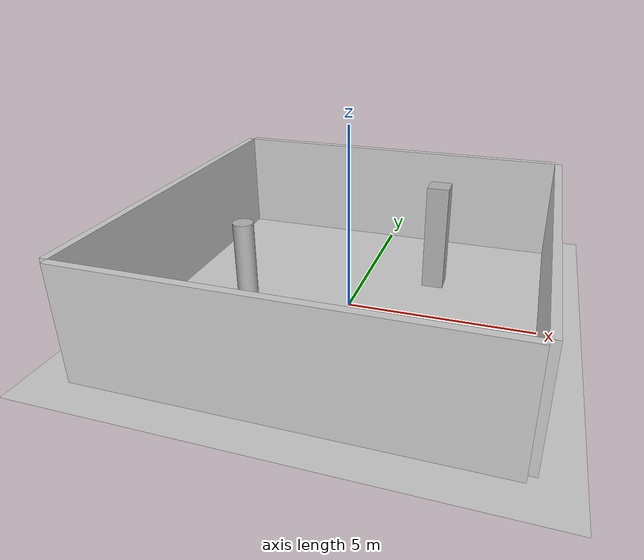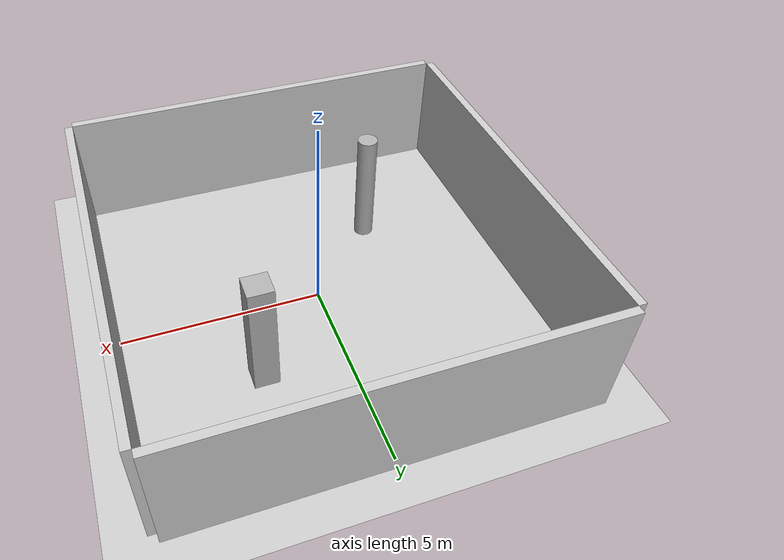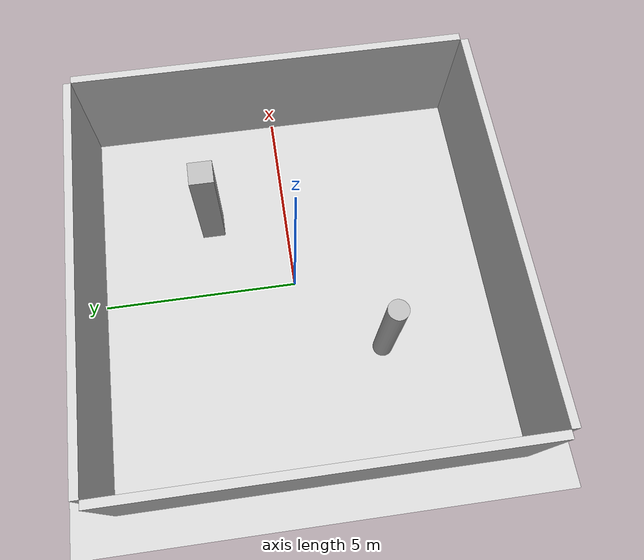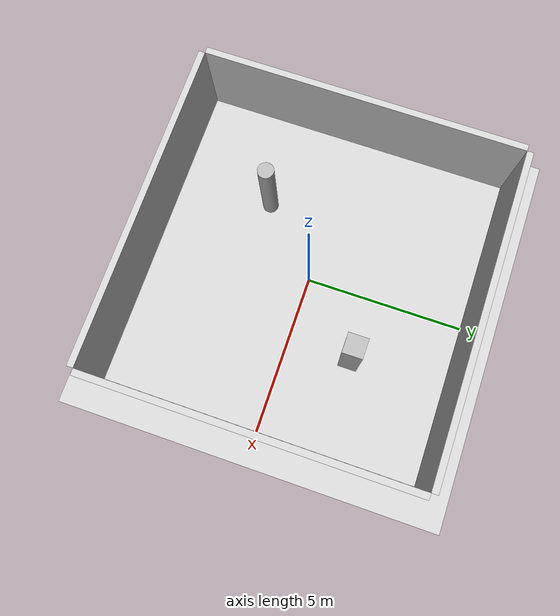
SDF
<?xml version="1.0" ?>
<sdf version="1.6">
  <world name="indoor_room_world">
    <include>
      <uri>model://ground_plane</uri>
    </include>
    <include>
      <uri>model://sun</uri>
    </include>

    <!-- Surrounding walls -->
    <model name="wall_north" static="true">
      <pose>0 5.1 1.5 0 0 0</pose>
      <link name="link">
        <collision name="collision">
          <geometry>
            <box>
              <size>10.0 0.2 3.0</size>
            </box>
          </geometry>
        </collision>
        <visual name="visual">
          <geometry>
            <box>
              <size>10.0 0.2 3.0</size>
            </box>
          </geometry>
          <material>
            <ambient>0.8 0.8 0.8 1.0</ambient>
            <diffuse>0.8 0.8 0.8 1.0</diffuse>
          </material>
        </visual>
      </link>
    </model>

    <model name="wall_south" static="true">
      <pose>0 -5.1 1.5 0 0 0</pose>
      <link name="link">
        <collision name="collision">
          <geometry>
            <box>
              <size>10.0 0.2 3.0</size>
            </box>
          </geometry>
        </collision>
        <visual name="visual">
          <geometry>
            <box>
              <size>10.0 0.2 3.0</size>
            </box>
          </geometry>
          <material>
            <ambient>0.8 0.8 0.8 1.0</ambient>
            <diffuse>0.8 0.8 0.8 1.0</diffuse>
          </material>
        </visual>
      </link>
    </model>

    <model name="wall_east" static="true">
      <pose>5.1 0 1.5 0 0 1.5708</pose>
      <link name="link">
        <collision name="collision">
          <geometry>
            <box>
              <size>10.0 0.2 3.0</size>
            </box>
          </geometry>
        </collision>
        <visual name="visual">
          <geometry>
            <box>
              <size>10.0 0.2 3.0</size>
            </box>
          </geometry>
          <material>
            <ambient>0.8 0.8 0.8 1.0</ambient>
            <diffuse>0.8 0.8 0.8 1.0</diffuse>
          </material>
        </visual>
      </link>
    </model>

    <model name="wall_west" static="true">
      <pose>-5.1 0 1.5 0 0 1.5708</pose>
      <link name="link">
        <collision name="collision">
          <geometry>
            <box>
              <size>10.0 0.2 3.0</size>
            </box>
          </geometry>
        </collision>
        <visual name="visual">
          <geometry>
            <box>
              <size>10.0 0.2 3.0</size>
            </box>
          </geometry>
          <material>
            <ambient>0.8 0.8 0.8 1.0</ambient>
            <diffuse>0.8 0.8 0.8 1.0</diffuse>
          </material>
        </visual>
      </link>
    </model>

    <!-- Interior pillars -->
    <model name="cylindrical_pillar" static="true">
      <pose>-2 -2 1.5 0 0 0</pose>
      <link name="link">
        <collision name="collision">
          <geometry>
            <cylinder>
              <radius>0.25</radius>
              <length>3.0</length>
            </cylinder>
          </geometry>
        </collision>
        <visual name="visual">
          <geometry>
            <cylinder>
              <radius>0.25</radius>
              <length>3.0</length>
            </cylinder>
          </geometry>
          <material>
            <ambient>0.7 0.7 0.7 1.0</ambient>
            <diffuse>0.7 0.7 0.7 1.0</diffuse>
          </material>
        </visual>
      </link>
    </model>

    <model name="rectangular_pillar" static="true">
      <pose>2 2 1.5 0 0 0</pose>
      <link name="link">
        <collision name="collision">
          <geometry>
            <box>
              <size>0.6 0.6 3.0</size>
            </box>
          </geometry>
        </collision>
        <visual name="visual">
          <geometry>
            <box>
              <size>0.6 0.6 3.0</size>
            </box>
          </geometry>
          <material>
            <ambient>0.7 0.7 0.7 1.0</ambient>
            <diffuse>0.7 0.7 0.7 1.0</diffuse>
          </material>
        </visual><?xml version="1.0" ?>
<sdf version="1.6">
  <world name="room_10x10_world">
    <!-- Sun -->
    <include>
      <uri>model://sun</uri>
    </include>

    <!-- 10m x 10m Room with 4 walls and a floor -->
    <model name="room_10x10">
      <static>true</static>
      <pose>0 0 0 0 0 0</pose>

      <!-- Floor (10 x 10 x 0.1 m) -->
      <link name="floor">
        <pose>0 0 -0.05 0 0 0</pose>
        <collision name="floor_col">
          <geometry>
            <box><size>10 10 0.1</size></box>
          </geometry>
          <surface>
            <friction>
              <ode><mu>1.0</mu><mu2>1.0</mu2></ode>
            </friction>
          </surface>
        </collision>
        <visual name="floor_vis">
          <geometry>
            <box><size>10 10 0.1</size></box>
          </geometry>
          <material>
            <ambient>0.2 0.2 0.2 1</ambient>
            <diffuse>0.3 0.3 0.35 1</diffuse>
          </material>
        </visual>
      </link>

      <!-- Walls (height 3 m, thickness 0.15 m) -->
      <!-- North wall (y=+5) -->
      <link name="wall_n">
        <pose>0 5 1.5 0 0 0</pose>
        <collision name="wall_n_col">
          <geometry>
            <box><size>10 0.15 3</size></box>
          </geometry>
        </collision>
        <visual name="wall_n_vis">
          <geometry>
            <box><size>10 0.15 3</size></box>
          </geometry>
          <material>
            <ambient>0.6 0.6 0.6 1</ambient>
            <diffuse>0.8 0.8 0.8 1</diffuse>
          </material>
        </visual>
      </link>

      <!-- South wall (y=-5) -->
      <link name="wall_s">
        <pose>0 -5 1.5 0 0 0</pose>
        <collision name="wall_s_col">
          <geometry>
            <box><size>10 0.15 3</size></box>
          </geometry>
        </collision>
        <visual name="wall_s_vis">
          <geometry>
            <box><size>10 0.15 3</size></box>
          </geometry>
          <material>
            <ambient>0.6 0.6 0.6 1</ambient>
            <diffuse>0.8 0.8 0.8 1</diffuse>
          </material>
        </visual>
      </link>

      <!-- East wall (x=+5) -->
      <link name="wall_e">
        <pose>5 0 1.5 0 0 0</pose>
        <collision name="wall_e_col">
          <geometry>
            <box><size>0.15 10 3</size></box>
          </geometry>
        </collision>
        <visual name="wall_e_vis">
          <geometry>
            <box><size>0.15 10 3</size></box>
          </geometry>
          <material>
            <ambient>0.6 0.6 0.6 1</ambient>
            <diffuse>0.8 0.8 0.8 1</diffuse>
          </material>
        </visual>
      </link>

      <!-- West wall (x=-5) -->
      <link name="wall_w">
        <pose>-5 0 1.5 0 0 0</pose>
        <collision name="wall_w_col">
          <geometry>
            <box><size>0.15 10 3</size></box>
          </geometry>
        </collision>
        <visual name="wall_w_vis">
          <geometry>
            <box><size>0.15 10 3</size></box>
          </geometry>
          <material>
            <ambient>0.6 0.6 0.6 1</ambient>
            <diffuse>0.8 0.8 0.8 1</diffuse>
          </material>
        </visual>
      </link>

      <!-- Cylindrical pillars (radius 0.25 m, height 2.8 m) -->
      <link name="cyl_pillar_1">
        <pose>-2.5 -2.5 1.4 0 0 0</pose>
        <collision name="cyl_pillar_1_col">
          <geometry>
            <cylinder><radius>0.25</radius><length>2.8</length></cylinder>
          </geometry>
        </collision>
        <visual name="cyl_pillar_1_vis">
          <geometry>
            <cylinder><radius>0.25</radius><length>2.8</length></cylinder>
          </geometry>
          <material>
            <ambient>0.3 0.3 0.5 1</ambient>
            <diffuse>0.4 0.4 0.8 1</diffuse>
          </material>
        </visual>
      </link>

      <link name="cyl_pillar_2">
        <pose>2.5 2.5 1.4 0 0 0</pose>
        <collision name="cyl_pillar_2_col">
          <geometry>
            <cylinder><radius>0.25</radius><length>2.8</length></cylinder>
          </geometry>
        </collision>
        <visual name="cyl_pillar_2_vis">
          <geometry>
            <cylinder><radius>0.25</radius><length>2.8</length></cylinder>
          </geometry>
          <material>
            <ambient>0.3 0.3 0.5 1</ambient>
            <diffuse>0.4 0.4 0.8 1</diffuse>
          </material>
        </visual>
      </link>

      <!-- Rectangular pillars (0.5 x 0.5 m, height 2.8 m) -->
      <link name="box_pillar_1">
        <pose>-2.5 2.5 1.4 0 0 0</pose>
        <collision name="box_pillar_1_col">
          <geometry>
            <box><size>0.5 0.5 2.8</size></box>
          </geometry>
        </collision>
        <visual name="box_pillar_1_vis">
          <geometry>
            <box><size>0.5 0.5 2.8</size></box>
          </geometry>
          <material>
            <ambient>0.5 0.3 0.3 1</ambient>
            <diffuse>0.8 0.4 0.4 1</diffuse>
          </material>
        </visual>
      </link>

      <link name="box_pillar_2">
        <pose>2.5 -2.5 1.4 0 0 0</pose>
        <collision name="box_pillar_2_col">
          <geometry>
            <box><size>0.5 0.5 2.8</size></box>
          </geometry>
        </collision>
        <visual name="box_pillar_2_vis">
          <geometry>
            <box><size>0.5 0.5 2.8</size></box>
          </geometry>
          <material>
            <ambient>0.5 0.3 0.3 1</ambient>
            <diffuse>0.8 0.4 0.4 1</diffuse>
          </material>
        </visual>
      </link>
    </model>

    <!-- Optional: physics timestep -->
    <physics type="ode">
      <max_step_size>0.001</max_step_size>
      <real_time_update_rate>1000</real_time_update_rate>
    </physics>
  </world>
</sdf>

      </link>
    </model>
  </world>
</sdf>
